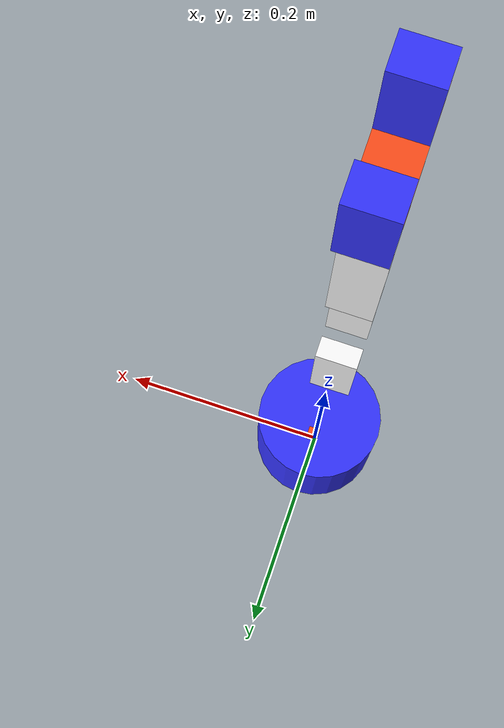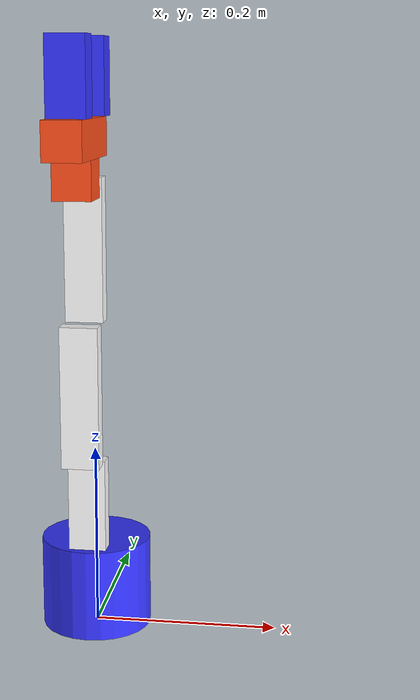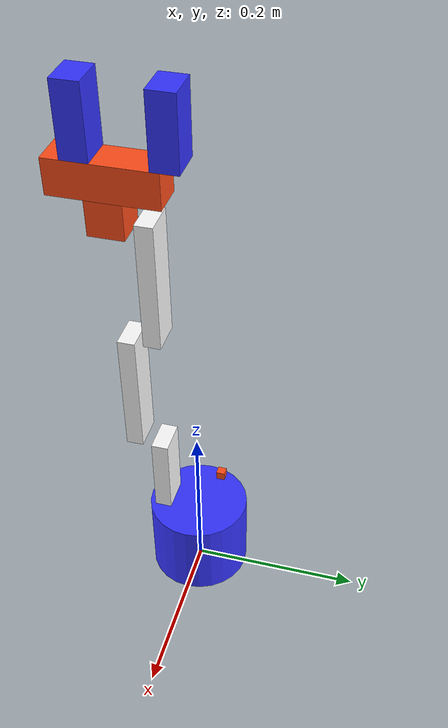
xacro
<?xml version="1.0"?>
<robot xmlns:xacro="http://www.ros.org/wiki/xacro"  name="robot">

    <link name="world"></link>

    <joint name="base_joint" type="fixed">
        <origin xyz="0 0 0" rpy="0 0 0"/>
        <parent link="world"/>
        <child link="base_link"/>
    </joint>

    <link name="base_link">
        <visual>
            <origin xyz="0 0 0.05" rpy="0 0 0"/>
            <geometry>
                <cylinder length="0.1" radius="0.06" />
            </geometry>
            <material name="blue">
                <color rgba="0.2 0.2 1 1"/>
            </material>
        </visual>
        <collision>
            <origin xyz="0 0 0.05" rpy="0 0 0"/>
            <geometry>
                <cylinder length="0.1" radius="0.06" />
            </geometry>
        </collision>
        <inertial>
            <origin xyz="0 0 0.05" rpy="0 0 0"/>
            <mass value="1.5" />
            <inertia ixx="0.001331" ixy="0.0" ixz="0.0" iyy="0.001331" iyz="0.0" izz="0.0027" />
        </inertial>
    </link>

    <joint name="joint_base_servo" type="revolute">
        <origin xyz="0 0 0.05" rpy="0 0 0"/>
        <parent link="base_link"/>
        <child link="servo_link"/>
        <axis xyz="0 0 1"/>
        <limit lower="${-pi/2}" upper="${pi/2}" velocity="100" effort="100"/>
    </joint>

    <link name="servo_link">
        <visual>
            <origin xyz="0 0.03 0.105" rpy="0 0 0"/>
            <geometry>
                <box size="0.01 0.01 0.01" />
            </geometry>
            <material name="orange">
                <color rgba="1 0.3 0.1 1"/>
            </material>
        </visual>
        <collision>
            <origin xyz="0 0.03 0.105" rpy="0 0 0"/>
            <geometry>
                <box size="0.01 0.01 0.01" />
            </geometry>
        </collision>
        <inertial>
            <origin xyz="0 0.03 0.105" rpy="0 0 0"/>
            <mass value="0.05" />
            <inertia ixx="0.0000001" ixy="0.0" ixz="0.0" iyy="0.0000001" iyz="0.0" izz="0.0000001" />
        </inertial>
    </link>

    <joint name="joint_servo_shaft1" type="revolute">
        <origin xyz="0 -0.05 0" rpy="0 0 0"/>
        <parent link="servo_link"/>
        <child link="shaft1_link"/>
        <axis xyz="0 1 0"/>
        <limit lower="${-pi/2}" upper="${pi/2}" velocity="100" effort="100"/>
    </joint>

    <link name="shaft1_link">
        <visual>
            <origin xyz="0 0.01 0.075" rpy="0 0 0"/>
            <geometry>
                <box size="0.04 0.02 0.15" />
            </geometry>
            <material name="white">
                <color rgba="1 1 1 1"/>
            </material>
        </visual>
        <collision>
            <origin xyz="0 0.01 0.075" rpy="0 0 0"/>
            <geometry>
                <box size="0.04 0.02 0.15" />
            </geometry>
        </collision>
        <inertial>
            <origin xyz="0 0.01 0.075" rpy="0 0 0"/>
            <mass value="0.1" />
            <inertia ixx="0.0001908" ixy="0.0" ixz="0.0" iyy="0.0002008" iyz="0.0" izz="0.0000167" />
        </inertial>
    </link>

    <joint name="joint_shaft1_shaft2" type="revolute">
        <origin xyz="0 -0.01 0.15" rpy="0 0 0"/>
        <parent link="shaft1_link"/>
        <child link="shaft2_link"/>
        <axis xyz="0 1 0"/>
        <limit lower="${-pi/2}" upper="${pi/2}" velocity="100" effort="100"/>
    </joint>

    <link name="shaft2_link">
        <visual>
            <origin xyz="0 -0.01 0.075" rpy="0 0 0"/>
            <geometry>
                <box size="0.04 0.02 0.15" />
            </geometry>
            <material name="white">
                <color rgba="1 1 1 1"/>
            </material>
        </visual>
        <collision>
            <origin xyz="0 -0.01 0.075" rpy="0 0 0"/>
            <geometry>
                <box size="0.04 0.02 0.15" />
            </geometry>
        </collision>
        <inertial>
            <origin xyz="0 -0.01 0.075" rpy="0 0 0"/>
            <mass value="0.1" />
            <inertia ixx="0.0001908" ixy="0.0" ixz="0.0" iyy="0.0002008" iyz="0.0" izz="0.0000167" />
        </inertial>
    </link>

    <joint name="joint_shaft2_shaft3" type="revolute">
        <origin xyz="0 0.01 0.15" rpy="0 0 0"/>
        <parent link="shaft2_link"/>
        <child link="shaft3_link"/>
        <axis xyz="0 1 0"/>
        <limit lower="${-pi/2}" upper="${pi/2}" velocity="100" effort="100"/>
    </joint>

    <link name="shaft3_link">
        <visual>
            <origin xyz="0 0.01 0.075" rpy="0 0 0"/>
            <geometry>
                <box size="0.04 0.02 0.15" />
            </geometry>
            <material name="white">
                <color rgba="1 1 1 1"/>
            </material>
        </visual>
        <collision>
            <origin xyz="0 0.01 0.075" rpy="0 0 0"/>
            <geometry>
                <box size="0.04 0.02 0.15" />
            </geometry>
        </collision>
        <inertial>
            <origin xyz="0 0.01 0.075" rpy="0 0 0"/>
            <mass value="0.1" />
            <inertia ixx="0.0001908" ixy="0.0" ixz="0.0" iyy="0.0002008" iyz="0.0" izz="0.0000167" />
        </inertial>
    </link>

    <joint name="joint_shaft3_hand" type="revolute">
        <origin xyz="0 -0.01 0.15" rpy="0 0 0"/>
        <parent link="shaft3_link"/>
        <child link="hand_link"/>
        <axis xyz="0 1 0"/>
        <limit lower="${-pi/2}" upper="${pi/2}" velocity="100" effort="100"/>
    </joint>

    <link name="hand_link">
        <visual>
            <origin xyz="0 -0.02 0" rpy="0 0 0"/>
            <geometry>
                <box size="0.04 0.04 0.04" />
            </geometry>
            <material name="orange">
                <color rgba="1 0.3 0.1 1"/>
            </material>
        </visual>
        <visual>
            <origin xyz="0 -0.02 0.04" rpy="0 0 0"/>
            <geometry>
                <box size="0.04 0.12 0.04" />
            </geometry>
            <material name="orange">
                <color rgba="1 0.3 0.1 1"/>
            </material>
        </visual>
        <collision>
            <origin xyz="0 -0.02 0.04" rpy="0 0 0"/>
            <geometry>
                <box size="0.04 0.12 0.04" />
            </geometry>
        </collision>
        <inertial>
            <origin xyz="0 -0.02 0.02" rpy="0 0 0"/>
            <mass value="1" />
            <inertia ixx="0.001733" ixy="0.0" ixz="0.0" iyy="0.0006667" iyz="0.0" izz="0.001333" />
        </inertial>
    </link>

    <joint name="joint_hand_leftfinger" type="prismatic">
        <origin xyz="0 -0.045 0.02" rpy="0 0 0"/>
        <parent link="hand_link"/>
        <child link="leftfinger_link"/>
        <axis xyz="0 1 0"/>
        <limit lower="0" upper="0.03" velocity="100" effort="100"/>
    </joint>

    <link name="leftfinger_link">
        <visual>
            <origin xyz="0 0.0 0.08" rpy="0 0 0"/>
            <geometry>
                <box size="0.04 0.03 0.08" />
            </geometry>
            <material name="blue">
                <color rgba="0.2 0.2 1 1"/>
            </material>
        </visual>
        <collision>
            <origin xyz="0 0.0 0.08" rpy="0 0 0"/>
            <geometry>
                <box size="0.04 0.03 0.08" />
            </geometry>
        </collision>
        <inertial>
            <origin xyz="0 0.0 0.08" rpy="0 0 0"/>
            <mass value="0.1" />
            <inertia ixx="0.000060833" ixy="0.0" ixz="0.0" iyy="0.00006666" iyz="0.0" izz="0.000020833" />
        </inertial>
    </link>

    <joint name="joint_hand_rightfinger" type="prismatic">
        <origin xyz="0 0.045 0.02" rpy="0 0 0"/>
        <parent link="hand_link"/>
        <child link="rightfinger_link"/>
        <axis xyz="0 -1 0"/>
        <limit lower="0.0" upper="0.03" velocity="100" effort="100"/>
    </joint>

    <link name="rightfinger_link">
        <visual>
            <origin xyz="0 0.0 0.08" rpy="0 0 0"/>
            <geometry>
                <box size="0.04 0.03 0.08" />
            </geometry>
            <material name="blue">
                <color rgba="0.2 0.2 1 1"/>
            </material>
        </visual>
        <collision>
            <origin xyz="0 0.0 0.08" rpy="0 0 0"/>
            <geometry>
                <box size="0.04 0.03 0.08" />
            </geometry>
        </collision>
        <inertial>
            <origin xyz="0 0.0 0.08" rpy="0 0 0"/>
            <mass value="0.1" />
            <inertia ixx="0.000060833" ixy="0.0" ixz="0.0" iyy="0.00006666" iyz="0.0" izz="0.000020833" />
        </inertial>
    </link>

</robot>
